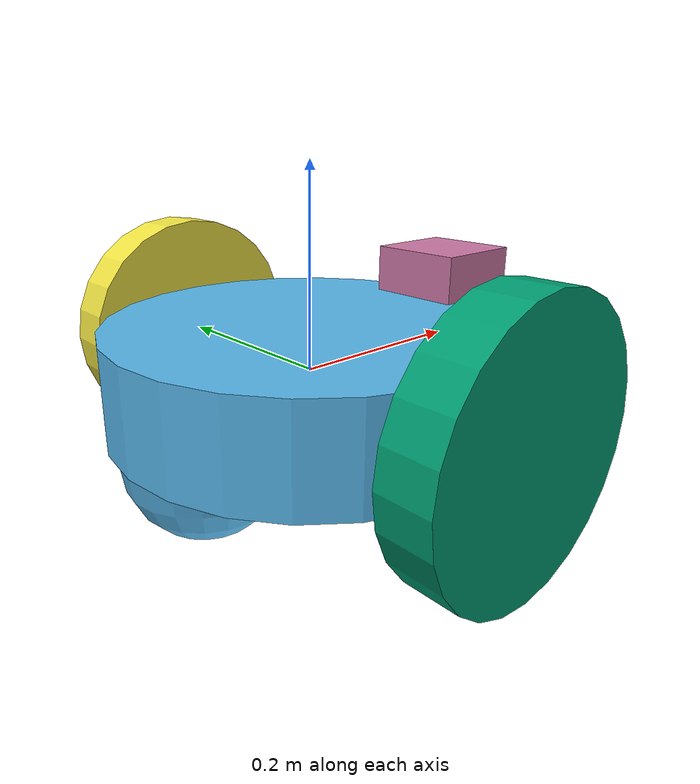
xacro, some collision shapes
<?xml version="1.0"?>

<robot name="nu_bot" xmlns:xacro="http://www.ros.org/wiki/xacro">
  <xacro:include filename="$(find slam_project)/urdf/nu_bot.gazebo"/>

  <!--
    Parameters
  -->

  <!-- Chassis -->
  <xacro:property name="ch_r" value="0.2"/>
  <xacro:property name="ch_l" value="0.10"/>

  <!-- Casters -->
  <xacro:property name="c_x" value="${(ch_r-c_r)}"/>
  <xacro:property name="c_y" value="0"/>
  <xacro:property name="c_z" value="${-ch_l/2}"/>
  <xacro:property name="c_r" value="${w_r+c_z-0.0001}"/>

  <!-- Wheels -->
  <xacro:property name="w_r" value="0.126"/>
  <xacro:property name="w_l" value="0.05"/>
  <xacro:property name="w_y" value="${ch_r + w_l/2 + 0.005}"/>

  <!-- Camera -->
  <xacro:property name="cam_x" value="${ch_r}"/>

  <!-- Laser sensor -->
  <xacro:property name="l_s" value="0.1"/>
  <xacro:property name="l_z" value="${ch_l/2}"/>

  <!--
    Robot
  -->
  <link name="robot_footprint"></link>

  <joint name="robot_footprint_joint" type="fixed">
    <origin xyz="0 0 0" rpy="0 0 0" />
    <parent link="robot_footprint"/>
    <child link="chassis" />
  </joint>

  <!-- CHASSIS -->
  <link name='chassis'>
    <pose>0 0 0.1 0 0 0</pose>

    <inertial>
      <mass value="10.0"/>
      <origin xyz="0.0 0 0" rpy=" 0 0 0"/>
      <inertia
          ixx="0.1" ixy="0" ixz="0"
          iyy="0.1" iyz="0"
          izz="0.1"
      />
    </inertial>

    <collision name='collision'>
      <origin xyz="0 0 0" rpy=" 0 0 0"/>
      <geometry>
        <cylinder length="${ch_l}" radius="${ch_r}"/>
      </geometry>
    </collision>

    <visual name='chassis_visual'>
      <origin xyz="0 0 0" rpy=" 0 0 0"/>
      <geometry>
        <cylinder length="${ch_l}" radius="${ch_r}"/>
      </geometry>
    </visual>

    <!-- CASTER 1 -->
    <collision name='caster_1_collision'>
      <origin xyz="${c_x} ${c_y} ${c_z}" rpy=" 0 0 0"/>
      <geometry>
        <sphere radius="${c_r}"/>
      </geometry>
    </collision>

    <visual name='caster_1_visual'>
      <origin xyz="${c_x} ${c_y} ${c_z}" rpy=" 0 0 0"/>
      <geometry>
        <sphere radius="${c_r}"/>
      </geometry>
    </visual>

    <!-- CASTER 2 -->
    <collision name='caster_2_collision'>
      <origin xyz="-${c_x} ${c_y} ${c_z}" rpy=" 0 0 0"/>
      <geometry>
        <sphere radius="${c_r}"/>
      </geometry>
    </collision>

    <visual name='caster_2_visual'>
      <origin xyz="-${c_x} ${c_y} ${c_z}" rpy=" 0 0 0"/>
      <geometry>
        <sphere radius="${c_r}"/>
      </geometry>
    </visual>
  </link>

  <!-- RIGHT WHEEL -->
  <link name ="right_wheel">
    <inertial>
      <mass value="5.0"/>
      <origin xyz="0 0 0" rpy="0 1.5707 1.5707"/>
      <inertia
          ixx="0.1" ixy="0" ixz="0"
          iyy="0.1" iyz="0"
          izz="0.1"
      />
    </inertial>

    <collision name="right_wheel_collision">
      <origin xyz="0 0 0" rpy="0 1.5707 1.5707"/>
      <geometry>
        <cylinder length="${w_l}" radius="${w_r}"/>
      </geometry>
    </collision>

    <visual name="right_wheel_visual">
      <origin xyz="0 0 0" rpy="0 1.5707 1.5707"/>
      <geometry>
        <cylinder length="${w_l}" radius="${w_r}"/>
      </geometry>
    </visual>
  </link>

  <joint type="continuous" name="right_wheel_hinge">
    <origin xyz="0 -${w_y} 0" rpy="0 0 0"/>
    <child link="right_wheel"/>
    <parent link="chassis"/>
    <axis xyz="0 1 0" rpy="0 0 0"/>
    <limit effort="10000" velocity="900"/>
    <dynamics damping="1.0" friction="1.0"/>
  </joint>

  <!-- LEFT WHEEL -->
  <link name ="left_wheel">
    <inertial>
      <mass value="5.0"/>
      <origin xyz="0 0 0" rpy="0 1.5707 1.5707"/>
      <inertia
          ixx="0.1" ixy="0" ixz="0"
          iyy="0.1" iyz="0"
          izz="0.1"
      />
    </inertial>

    <collision name="left_wheel_collision">
      <origin xyz="0 0 0" rpy="0 1.5707 1.5707"/>
      <geometry>
        <cylinder length="${w_l}" radius="${w_r}"/>
      </geometry>
    </collision>

    <visual name="left_wheel_visual">
      <origin xyz="0 0 0" rpy="0 1.5707 1.5707"/>
      <geometry>
        <cylinder length="${w_l}" radius="${w_r}"/>
      </geometry>
    </visual>
  </link>

  <joint type="continuous" name="left_wheel_hinge">
    <origin xyz="0 ${w_y} 0" rpy="0 0 0"/>
    <child link="left_wheel"/>
    <parent link="chassis"/>
    <axis xyz="0 1 0" rpy="0 0 0"/>
    <limit effort="10000" velocity="900"/>
    <dynamics damping="1.0" friction="1.0"/>
  </joint>

  <!-- CAMERA -->
  <link name="camera">
    <inertial>
      <mass value="0.1"/>
      <origin xyz="0 0 0" rpy="0 0 0"/>
      <inertia
          ixx="1e-6" ixy="0" ixz="0"
          iyy="1e-6" iyz="0"
          izz="1e-6"
      />
    </inertial>

    <collision name="camera_collision">
      <origin xyz="0 0 0" rpy="0 0 0"/>
      <geometry>
        <box size="0.05 0.05 0.05"/>
      </geometry>
    </collision>

    <visual name="camera_visual">
      <origin xyz="0 0 0" rpy="0 0 0"/>
      <geometry>
        <box size="0.05 0.05 0.05"/>
      </geometry>
    </visual>
  </link>

  <joint type="fixed" name="camera_joint">
    <origin xyz="${cam_x} 0 0" rpy="0 0 0"/>
    <child link="camera"/>
    <parent link="chassis"/>
  </joint>

  <!-- camera rgbd frame -->
  <link name="camera_rgbd_frame"></link>
  <joint type="fixed" name="camera_rgbd_frame_joint">
    <origin xyz="0 0 0" rpy="${-pi/2} 0 ${-pi/2}"/>
    <child link="camera_rgbd_frame"/>
    <parent link="camera"/>
  </joint>

  <!-- LASER RANGEFINDER -->
  <link name="hokuyo">
    <inertial>
      <mass value="0.1"/>
      <origin xyz="0 0 0" rpy="0 0 0"/>
      <inertia
          ixx="1e-6" ixy="0" ixz="0"
          iyy="1e-6" iyz="0"
          izz="1e-6"
      />
    </inertial>

    <collision name="hokuyo_collision">
      <origin xyz="0 0 0" rpy="0 0 0"/>
      <geometry>
        <box size="${l_s} ${l_s} ${l_s}"/>
      </geometry>
    </collision>

    <visual name="hokuyo_visual">
      <origin xyz="0 0 0" rpy="0 0 0"/>
      <geometry>
        <mesh filename="package://slam_project/meshes/hokuyo.dae"/>
      </geometry>
    </visual>
  </link>

  <joint type="fixed" name="hokuyo_joint">
    <origin xyz="${ch_r} 0 ${l_z}" rpy="0 0 0"/>
    <child link="hokuyo"/>
    <parent link="chassis"/>
  </joint>
</robot>
